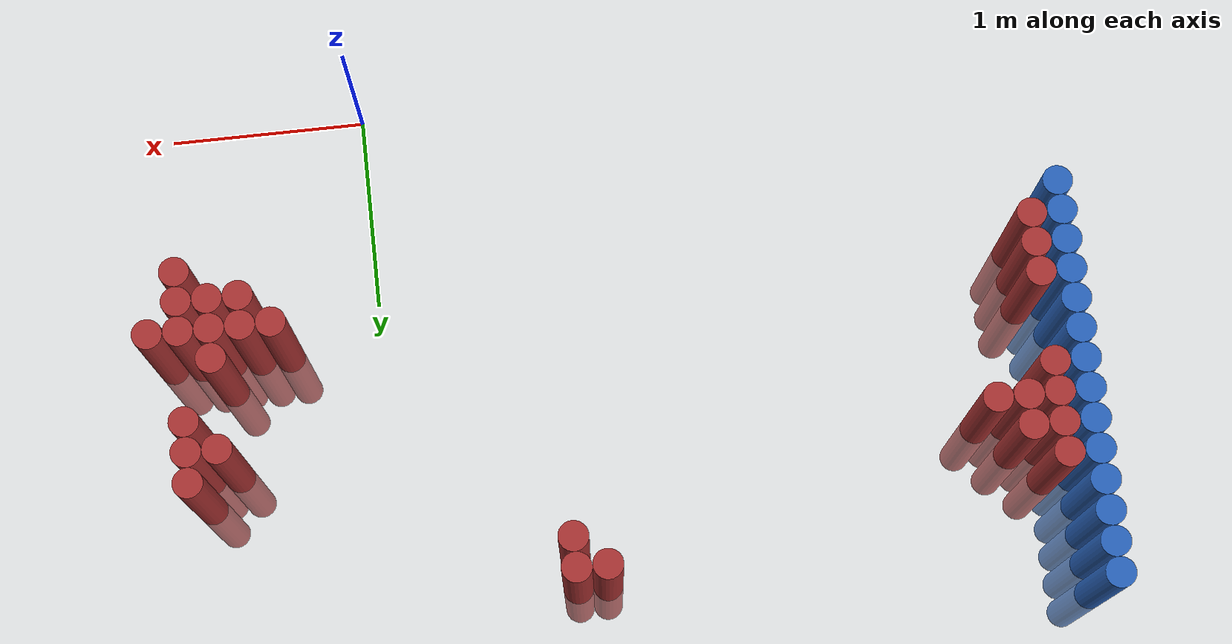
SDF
<sdf version="1.6">
 <world name="default">
  <model name="ground_plane">
   <static>1</static>
   <link name="link">
    <collision name="collision">
     <geometry><plane><normal>0 0 1</normal><size>100 100</size></plane></geometry>
     <surface><friction><ode><mu>100</mu><mu2>50</mu2></ode></friction></surface>
    </collision>
    <visual name="visual">
     <cast_shadows>0</cast_shadows>
     <geometry><plane><normal>0 0 1</normal><size>100 100</size></plane></geometry>
     <material>
      <script><uri>file://media/materials/scripts/gazebo.material</uri><name>Gazebo/Grey</name></script>
     </material>
    </visual>
   </link>
  </model>
  <model name="unit_cylinder_129">
   <static>1</static>
   <pose>-3.425000 1.075000 0.000000 0.000000 0.000000 0.000000</pose>
   <link name="link">
    <inertial>
     <mass>1</mass>
     <inertia><ixx>0.145833</ixx><ixy>0</ixy><ixz>0</ixz><iyy>0.145833</iyy><iyz>0</iyz><izz>0.125</izz></inertia>
    </inertial>
    <collision name="collision">
     <geometry><cylinder><radius>0.075000</radius><length>1.5</length></cylinder></geometry>
    </collision>
    <visual name="visual">
     <geometry><cylinder><radius>0.075000</radius><length>1.5</length></cylinder></geometry>
     <material>
      <ambient>0.152000 0.379000 0.720000 1</ambient>
      <diffuse>0.152000 0.379000 0.720000 1</diffuse>
     </material>
     <material>
      <script><name>Gazebo/Grey</name><uri>file://media/materials/scripts/gazebo.material</uri></script>
     </material>
    </visual>
   </link>
  </model>
  <model name="unit_cylinder_131">
   <static>1</static>
   <pose>-3.425000 1.225000 0.000000 0.000000 0.000000 0.000000</pose>
   <link name="link">
    <inertial>
     <mass>1</mass>
     <inertia><ixx>0.145833</ixx><ixy>0</ixy><ixz>0</ixz><iyy>0.145833</iyy><iyz>0</iyz><izz>0.125</izz></inertia>
    </inertial>
    <collision name="collision">
     <geometry><cylinder><radius>0.075000</radius><length>1.5</length></cylinder></geometry>
    </collision>
    <visual name="visual">
     <geometry><cylinder><radius>0.075000</radius><length>1.5</length></cylinder></geometry>
     <material>
      <ambient>0.152000 0.379000 0.720000 1</ambient>
      <diffuse>0.152000 0.379000 0.720000 1</diffuse>
     </material>
     <material>
      <script><name>Gazebo/Grey</name><uri>file://media/materials/scripts/gazebo.material</uri></script>
     </material>
    </visual>
   </link>
  </model>
  <model name="unit_cylinder_133">
   <static>1</static>
   <pose>-3.425000 1.375000 0.000000 0.000000 0.000000 0.000000</pose>
   <link name="link">
    <inertial>
     <mass>1</mass>
     <inertia><ixx>0.145833</ixx><ixy>0</ixy><ixz>0</ixz><iyy>0.145833</iyy><iyz>0</iyz><izz>0.125</izz></inertia>
    </inertial>
    <collision name="collision">
     <geometry><cylinder><radius>0.075000</radius><length>1.5</length></cylinder></geometry>
    </collision>
    <visual name="visual">
     <geometry><cylinder><radius>0.075000</radius><length>1.5</length></cylinder></geometry>
     <material>
      <ambient>0.152000 0.379000 0.720000 1</ambient>
      <diffuse>0.152000 0.379000 0.720000 1</diffuse>
     </material>
     <material>
      <script><name>Gazebo/Grey</name><uri>file://media/materials/scripts/gazebo.material</uri></script>
     </material>
    </visual>
   </link>
  </model>
  <model name="unit_cylinder_135">
   <static>1</static>
   <pose>-3.425000 1.525000 0.000000 0.000000 0.000000 0.000000</pose>
   <link name="link">
    <inertial>
     <mass>1</mass>
     <inertia><ixx>0.145833</ixx><ixy>0</ixy><ixz>0</ixz><iyy>0.145833</iyy><iyz>0</iyz><izz>0.125</izz></inertia>
    </inertial>
    <collision name="collision">
     <geometry><cylinder><radius>0.075000</radius><length>1.5</length></cylinder></geometry>
    </collision>
    <visual name="visual">
     <geometry><cylinder><radius>0.075000</radius><length>1.5</length></cylinder></geometry>
     <material>
      <ambient>0.152000 0.379000 0.720000 1</ambient>
      <diffuse>0.152000 0.379000 0.720000 1</diffuse>
     </material>
     <material>
      <script><name>Gazebo/Grey</name><uri>file://media/materials/scripts/gazebo.material</uri></script>
     </material>
    </visual>
   </link>
  </model>
  <model name="unit_cylinder_137">
   <static>1</static>
   <pose>-3.425000 1.675000 0.000000 0.000000 0.000000 0.000000</pose>
   <link name="link">
    <inertial>
     <mass>1</mass>
     <inertia><ixx>0.145833</ixx><ixy>0</ixy><ixz>0</ixz><iyy>0.145833</iyy><iyz>0</iyz><izz>0.125</izz></inertia>
    </inertial>
    <collision name="collision">
     <geometry><cylinder><radius>0.075000</radius><length>1.5</length></cylinder></geometry>
    </collision>
    <visual name="visual">
     <geometry><cylinder><radius>0.075000</radius><length>1.5</length></cylinder></geometry>
     <material>
      <ambient>0.152000 0.379000 0.720000 1</ambient>
      <diffuse>0.152000 0.379000 0.720000 1</diffuse>
     </material>
     <material>
      <script><name>Gazebo/Grey</name><uri>file://media/materials/scripts/gazebo.material</uri></script>
     </material>
    </visual>
   </link>
  </model>
  <model name="unit_cylinder_139">
   <static>1</static>
   <pose>-3.425000 1.825000 0.000000 0.000000 0.000000 0.000000</pose>
   <link name="link">
    <inertial>
     <mass>1</mass>
     <inertia><ixx>0.145833</ixx><ixy>0</ixy><ixz>0</ixz><iyy>0.145833</iyy><iyz>0</iyz><izz>0.125</izz></inertia>
    </inertial>
    <collision name="collision">
     <geometry><cylinder><radius>0.075000</radius><length>1.5</length></cylinder></geometry>
    </collision>
    <visual name="visual">
     <geometry><cylinder><radius>0.075000</radius><length>1.5</length></cylinder></geometry>
     <material>
      <ambient>0.152000 0.379000 0.720000 1</ambient>
      <diffuse>0.152000 0.379000 0.720000 1</diffuse>
     </material>
     <material>
      <script><name>Gazebo/Grey</name><uri>file://media/materials/scripts/gazebo.material</uri></script>
     </material>
    </visual>
   </link>
  </model>
  <model name="unit_cylinder_141">
   <static>1</static>
   <pose>-3.425000 1.975000 0.000000 0.000000 0.000000 0.000000</pose>
   <link name="link">
    <inertial>
     <mass>1</mass>
     <inertia><ixx>0.145833</ixx><ixy>0</ixy><ixz>0</ixz><iyy>0.145833</iyy><iyz>0</iyz><izz>0.125</izz></inertia>
    </inertial>
    <collision name="collision">
     <geometry><cylinder><radius>0.075000</radius><length>1.5</length></cylinder></geometry>
    </collision>
    <visual name="visual">
     <geometry><cylinder><radius>0.075000</radius><length>1.5</length></cylinder></geometry>
     <material>
      <ambient>0.152000 0.379000 0.720000 1</ambient>
      <diffuse>0.152000 0.379000 0.720000 1</diffuse>
     </material>
     <material>
      <script><name>Gazebo/Grey</name><uri>file://media/materials/scripts/gazebo.material</uri></script>
     </material>
    </visual>
   </link>
  </model>
  <model name="unit_cylinder_143">
   <static>1</static>
   <pose>-3.425000 2.125000 0.000000 0.000000 0.000000 0.000000</pose>
   <link name="link">
    <inertial>
     <mass>1</mass>
     <inertia><ixx>0.145833</ixx><ixy>0</ixy><ixz>0</ixz><iyy>0.145833</iyy><iyz>0</iyz><izz>0.125</izz></inertia>
    </inertial>
    <collision name="collision">
     <geometry><cylinder><radius>0.075000</radius><length>1.5</length></cylinder></geometry>
    </collision>
    <visual name="visual">
     <geometry><cylinder><radius>0.075000</radius><length>1.5</length></cylinder></geometry>
     <material>
      <ambient>0.152000 0.379000 0.720000 1</ambient>
      <diffuse>0.152000 0.379000 0.720000 1</diffuse>
     </material>
     <material>
      <script><name>Gazebo/Grey</name><uri>file://media/materials/scripts/gazebo.material</uri></script>
     </material>
    </visual>
   </link>
  </model>
  <model name="unit_cylinder_145">
   <static>1</static>
   <pose>-3.425000 2.275000 0.000000 0.000000 0.000000 0.000000</pose>
   <link name="link">
    <inertial>
     <mass>1</mass>
     <inertia><ixx>0.145833</ixx><ixy>0</ixy><ixz>0</ixz><iyy>0.145833</iyy><iyz>0</iyz><izz>0.125</izz></inertia>
    </inertial>
    <collision name="collision">
     <geometry><cylinder><radius>0.075000</radius><length>1.5</length></cylinder></geometry>
    </collision>
    <visual name="visual">
     <geometry><cylinder><radius>0.075000</radius><length>1.5</length></cylinder></geometry>
     <material>
      <ambient>0.152000 0.379000 0.720000 1</ambient>
      <diffuse>0.152000 0.379000 0.720000 1</diffuse>
     </material>
     <material>
      <script><name>Gazebo/Grey</name><uri>file://media/materials/scripts/gazebo.material</uri></script>
     </material>
    </visual>
   </link>
  </model>
  <model name="unit_cylinder_147">
   <static>1</static>
   <pose>-3.425000 2.425000 0.000000 0.000000 0.000000 0.000000</pose>
   <link name="link">
    <inertial>
     <mass>1</mass>
     <inertia><ixx>0.145833</ixx><ixy>0</ixy><ixz>0</ixz><iyy>0.145833</iyy><iyz>0</iyz><izz>0.125</izz></inertia>
    </inertial>
    <collision name="collision">
     <geometry><cylinder><radius>0.075000</radius><length>1.5</length></cylinder></geometry>
    </collision>
    <visual name="visual">
     <geometry><cylinder><radius>0.075000</radius><length>1.5</length></cylinder></geometry>
     <material>
      <ambient>0.152000 0.379000 0.720000 1</ambient>
      <diffuse>0.152000 0.379000 0.720000 1</diffuse>
     </material>
     <material>
      <script><name>Gazebo/Grey</name><uri>file://media/materials/scripts/gazebo.material</uri></script>
     </material>
    </visual>
   </link>
  </model>
  <model name="unit_cylinder_149">
   <static>1</static>
   <pose>-3.425000 2.575000 0.000000 0.000000 0.000000 0.000000</pose>
   <link name="link">
    <inertial>
     <mass>1</mass>
     <inertia><ixx>0.145833</ixx><ixy>0</ixy><ixz>0</ixz><iyy>0.145833</iyy><iyz>0</iyz><izz>0.125</izz></inertia>
    </inertial>
    <collision name="collision">
     <geometry><cylinder><radius>0.075000</radius><length>1.5</length></cylinder></geometry>
    </collision>
    <visual name="visual">
     <geometry><cylinder><radius>0.075000</radius><length>1.5</length></cylinder></geometry>
     <material>
      <ambient>0.152000 0.379000 0.720000 1</ambient>
      <diffuse>0.152000 0.379000 0.720000 1</diffuse>
     </material>
     <material>
      <script><name>Gazebo/Grey</name><uri>file://media/materials/scripts/gazebo.material</uri></script>
     </material>
    </visual>
   </link>
  </model>
  <model name="unit_cylinder_151">
   <static>1</static>
   <pose>-3.425000 2.725000 0.000000 0.000000 0.000000 0.000000</pose>
   <link name="link">
    <inertial>
     <mass>1</mass>
     <inertia><ixx>0.145833</ixx><ixy>0</ixy><ixz>0</ixz><iyy>0.145833</iyy><iyz>0</iyz><izz>0.125</izz></inertia>
    </inertial>
    <collision name="collision">
     <geometry><cylinder><radius>0.075000</radius><length>1.5</length></cylinder></geometry>
    </collision>
    <visual name="visual">
     <geometry><cylinder><radius>0.075000</radius><length>1.5</length></cylinder></geometry>
     <material>
      <ambient>0.152000 0.379000 0.720000 1</ambient>
      <diffuse>0.152000 0.379000 0.720000 1</diffuse>
     </material>
     <material>
      <script><name>Gazebo/Grey</name><uri>file://media/materials/scripts/gazebo.material</uri></script>
     </material>
    </visual>
   </link>
  </model>
  <model name="unit_cylinder_153">
   <static>1</static>
   <pose>-3.425000 2.875000 0.000000 0.000000 0.000000 0.000000</pose>
   <link name="link">
    <inertial>
     <mass>1</mass>
     <inertia><ixx>0.145833</ixx><ixy>0</ixy><ixz>0</ixz><iyy>0.145833</iyy><iyz>0</iyz><izz>0.125</izz></inertia>
    </inertial>
    <collision name="collision">
     <geometry><cylinder><radius>0.075000</radius><length>1.5</length></cylinder></geometry>
    </collision>
    <visual name="visual">
     <geometry><cylinder><radius>0.075000</radius><length>1.5</length></cylinder></geometry>
     <material>
      <ambient>0.152000 0.379000 0.720000 1</ambient>
      <diffuse>0.152000 0.379000 0.720000 1</diffuse>
     </material>
     <material>
      <script><name>Gazebo/Grey</name><uri>file://media/materials/scripts/gazebo.material</uri></script>
     </material>
    </visual>
   </link>
  </model>
  <model name="unit_cylinder_227">
   <static>1</static>
   <pose>-3.425000 0.925000 0.000000 0.000000 0.000000 0.000000</pose>
   <link name="link">
    <inertial>
     <mass>1</mass>
     <inertia><ixx>0.145833</ixx><ixy>0</ixy><ixz>0</ixz><iyy>0.145833</iyy><iyz>0</iyz><izz>0.125</izz></inertia>
    </inertial>
    <collision name="collision">
     <geometry><cylinder><radius>0.075000</radius><length>1.5</length></cylinder></geometry>
    </collision>
    <visual name="visual">
     <geometry><cylinder><radius>0.075000</radius><length>1.5</length></cylinder></geometry>
     <material>
      <ambient>0.152000 0.379000 0.720000 1</ambient>
      <diffuse>0.152000 0.379000 0.720000 1</diffuse>
     </material>
     <material>
      <script><name>Gazebo/Grey</name><uri>file://media/materials/scripts/gazebo.material</uri></script>
     </material>
    </visual>
   </link>
  </model>
  <model name="unit_cylinder_228">
   <static>1</static>
   <pose>-3.425000 1.075000 0.000000 0.000000 0.000000 0.000000</pose>
   <link name="link">
    <inertial>
     <mass>1</mass>
     <inertia><ixx>0.145833</ixx><ixy>0</ixy><ixz>0</ixz><iyy>0.145833</iyy><iyz>0</iyz><izz>0.125</izz></inertia>
    </inertial>
    <collision name="collision">
     <geometry><cylinder><radius>0.075000</radius><length>1.5</length></cylinder></geometry>
    </collision>
    <visual name="visual">
     <geometry><cylinder><radius>0.075000</radius><length>1.5</length></cylinder></geometry>
     <material>
      <ambient>0.152000 0.379000 0.720000 1</ambient>
      <diffuse>0.152000 0.379000 0.720000 1</diffuse>
     </material>
     <material>
      <script><name>Gazebo/Grey</name><uri>file://media/materials/scripts/gazebo.material</uri></script>
     </material>
    </visual>
   </link>
  </model>
  <model name="unit_cylinder_229">
   <static>1</static>
   <pose>-3.425000 1.225000 0.000000 0.000000 0.000000 0.000000</pose>
   <link name="link">
    <inertial>
     <mass>1</mass>
     <inertia><ixx>0.145833</ixx><ixy>0</ixy><ixz>0</ixz><iyy>0.145833</iyy><iyz>0</iyz><izz>0.125</izz></inertia>
    </inertial>
    <collision name="collision">
     <geometry><cylinder><radius>0.075000</radius><length>1.5</length></cylinder></geometry>
    </collision>
    <visual name="visual">
     <geometry><cylinder><radius>0.075000</radius><length>1.5</length></cylinder></geometry>
     <material>
      <ambient>0.152000 0.379000 0.720000 1</ambient>
      <diffuse>0.152000 0.379000 0.720000 1</diffuse>
     </material>
     <material>
      <script><name>Gazebo/Grey</name><uri>file://media/materials/scripts/gazebo.material</uri></script>
     </material>
    </visual>
   </link>
  </model>
  <model name="unit_cylinder_230">
   <static>1</static>
   <pose>-3.425000 1.375000 0.000000 0.000000 0.000000 0.000000</pose>
   <link name="link">
    <inertial>
     <mass>1</mass>
     <inertia><ixx>0.145833</ixx><ixy>0</ixy><ixz>0</ixz><iyy>0.145833</iyy><iyz>0</iyz><izz>0.125</izz></inertia>
    </inertial>
    <collision name="collision">
     <geometry><cylinder><radius>0.075000</radius><length>1.5</length></cylinder></geometry>
    </collision>
    <visual name="visual">
     <geometry><cylinder><radius>0.075000</radius><length>1.5</length></cylinder></geometry>
     <material>
      <ambient>0.152000 0.379000 0.720000 1</ambient>
      <diffuse>0.152000 0.379000 0.720000 1</diffuse>
     </material>
     <material>
      <script><name>Gazebo/Grey</name><uri>file://media/materials/scripts/gazebo.material</uri></script>
     </material>
    </visual>
   </link>
  </model>
  <model name="unit_cylinder_231">
   <static>1</static>
   <pose>-3.425000 1.525000 0.000000 0.000000 0.000000 0.000000</pose>
   <link name="link">
    <inertial>
     <mass>1</mass>
     <inertia><ixx>0.145833</ixx><ixy>0</ixy><ixz>0</ixz><iyy>0.145833</iyy><iyz>0</iyz><izz>0.125</izz></inertia>
    </inertial>
    <collision name="collision">
     <geometry><cylinder><radius>0.075000</radius><length>1.5</length></cylinder></geometry>
    </collision>
    <visual name="visual">
     <geometry><cylinder><radius>0.075000</radius><length>1.5</length></cylinder></geometry>
     <material>
      <ambient>0.152000 0.379000 0.720000 1</ambient>
      <diffuse>0.152000 0.379000 0.720000 1</diffuse>
     </material>
     <material>
      <script><name>Gazebo/Grey</name><uri>file://media/materials/scripts/gazebo.material</uri></script>
     </material>
    </visual>
   </link>
  </model>
  <model name="unit_cylinder_232">
   <static>1</static>
   <pose>-3.425000 1.675000 0.000000 0.000000 0.000000 0.000000</pose>
   <link name="link">
    <inertial>
     <mass>1</mass>
     <inertia><ixx>0.145833</ixx><ixy>0</ixy><ixz>0</ixz><iyy>0.145833</iyy><iyz>0</iyz><izz>0.125</izz></inertia>
    </inertial>
    <collision name="collision">
     <geometry><cylinder><radius>0.075000</radius><length>1.5</length></cylinder></geometry>
    </collision>
    <visual name="visual">
     <geometry><cylinder><radius>0.075000</radius><length>1.5</length></cylinder></geometry>
     <material>
      <ambient>0.152000 0.379000 0.720000 1</ambient>
      <diffuse>0.152000 0.379000 0.720000 1</diffuse>
     </material>
     <material>
      <script><name>Gazebo/Grey</name><uri>file://media/materials/scripts/gazebo.material</uri></script>
     </material>
    </visual>
   </link>
  </model>
  <model name="unit_cylinder_233">
   <static>1</static>
   <pose>-3.425000 1.825000 0.000000 0.000000 0.000000 0.000000</pose>
   <link name="link">
    <inertial>
     <mass>1</mass>
     <inertia><ixx>0.145833</ixx><ixy>0</ixy><ixz>0</ixz><iyy>0.145833</iyy><iyz>0</iyz><izz>0.125</izz></inertia>
    </inertial>
    <collision name="collision">
     <geometry><cylinder><radius>0.075000</radius><length>1.5</length></cylinder></geometry>
    </collision>
    <visual name="visual">
     <geometry><cylinder><radius>0.075000</radius><length>1.5</length></cylinder></geometry>
     <material>
      <ambient>0.152000 0.379000 0.720000 1</ambient>
      <diffuse>0.152000 0.379000 0.720000 1</diffuse>
     </material>
     <material>
      <script><name>Gazebo/Grey</name><uri>file://media/materials/scripts/gazebo.material</uri></script>
     </material>
    </visual>
   </link>
  </model>
  <model name="unit_cylinder_234">
   <static>1</static>
   <pose>-3.425000 1.975000 0.000000 0.000000 0.000000 0.000000</pose>
   <link name="link">
    <inertial>
     <mass>1</mass>
     <inertia><ixx>0.145833</ixx><ixy>0</ixy><ixz>0</ixz><iyy>0.145833</iyy><iyz>0</iyz><izz>0.125</izz></inertia>
    </inertial>
    <collision name="collision">
     <geometry><cylinder><radius>0.075000</radius><length>1.5</length></cylinder></geometry>
    </collision>
    <visual name="visual">
     <geometry><cylinder><radius>0.075000</radius><length>1.5</length></cylinder></geometry>
     <material>
      <ambient>0.152000 0.379000 0.720000 1</ambient>
      <diffuse>0.152000 0.379000 0.720000 1</diffuse>
     </material>
     <material>
      <script><name>Gazebo/Grey</name><uri>file://media/materials/scripts/gazebo.material</uri></script>
     </material>
    </visual>
   </link>
  </model>
  <model name="unit_cylinder_235">
   <static>1</static>
   <pose>-3.425000 2.125000 0.000000 0.000000 0.000000 0.000000</pose>
   <link name="link">
    <inertial>
     <mass>1</mass>
     <inertia><ixx>0.145833</ixx><ixy>0</ixy><ixz>0</ixz><iyy>0.145833</iyy><iyz>0</iyz><izz>0.125</izz></inertia>
    </inertial>
    <collision name="collision">
     <geometry><cylinder><radius>0.075000</radius><length>1.5</length></cylinder></geometry>
    </collision>
    <visual name="visual">
     <geometry><cylinder><radius>0.075000</radius><length>1.5</length></cylinder></geometry>
     <material>
      <ambient>0.152000 0.379000 0.720000 1</ambient>
      <diffuse>0.152000 0.379000 0.720000 1</diffuse>
     </material>
     <material>
      <script><name>Gazebo/Grey</name><uri>file://media/materials/scripts/gazebo.material</uri></script>
     </material>
    </visual>
   </link>
  </model>
  <model name="unit_cylinder_236">
   <static>1</static>
   <pose>-3.425000 2.275000 0.000000 0.000000 0.000000 0.000000</pose>
   <link name="link">
    <inertial>
     <mass>1</mass>
     <inertia><ixx>0.145833</ixx><ixy>0</ixy><ixz>0</ixz><iyy>0.145833</iyy><iyz>0</iyz><izz>0.125</izz></inertia>
    </inertial>
    <collision name="collision">
     <geometry><cylinder><radius>0.075000</radius><length>1.5</length></cylinder></geometry>
    </collision>
    <visual name="visual">
     <geometry><cylinder><radius>0.075000</radius><length>1.5</length></cylinder></geometry>
     <material>
      <ambient>0.152000 0.379000 0.720000 1</ambient>
      <diffuse>0.152000 0.379000 0.720000 1</diffuse>
     </material>
     <material>
      <script><name>Gazebo/Grey</name><uri>file://media/materials/scripts/gazebo.material</uri></script>
     </material>
    </visual>
   </link>
  </model>
  <model name="unit_cylinder_237">
   <static>1</static>
   <pose>-3.425000 2.425000 0.000000 0.000000 0.000000 0.000000</pose>
   <link name="link">
    <inertial>
     <mass>1</mass>
     <inertia><ixx>0.145833</ixx><ixy>0</ixy><ixz>0</ixz><iyy>0.145833</iyy><iyz>0</iyz><izz>0.125</izz></inertia>
    </inertial>
    <collision name="collision">
     <geometry><cylinder><radius>0.075000</radius><length>1.5</length></cylinder></geometry>
    </collision>
    <visual name="visual">
     <geometry><cylinder><radius>0.075000</radius><length>1.5</length></cylinder></geometry>
     <material>
      <ambient>0.152000 0.379000 0.720000 1</ambient>
      <diffuse>0.152000 0.379000 0.720000 1</diffuse>
     </material>
     <material>
      <script><name>Gazebo/Grey</name><uri>file://media/materials/scripts/gazebo.material</uri></script>
     </material>
    </visual>
   </link>
  </model>
  <model name="unit_cylinder_238">
   <static>1</static>
   <pose>-3.425000 2.575000 0.000000 0.000000 0.000000 0.000000</pose>
   <link name="link">
    <inertial>
     <mass>1</mass>
     <inertia><ixx>0.145833</ixx><ixy>0</ixy><ixz>0</ixz><iyy>0.145833</iyy><iyz>0</iyz><izz>0.125</izz></inertia>
    </inertial>
    <collision name="collision">
     <geometry><cylinder><radius>0.075000</radius><length>1.5</length></cylinder></geometry>
    </collision>
    <visual name="visual">
     <geometry><cylinder><radius>0.075000</radius><length>1.5</length></cylinder></geometry>
     <material>
      <ambient>0.152000 0.379000 0.720000 1</ambient>
      <diffuse>0.152000 0.379000 0.720000 1</diffuse>
     </material>
     <material>
      <script><name>Gazebo/Grey</name><uri>file://media/materials/scripts/gazebo.material</uri></script>
     </material>
    </visual>
   </link>
  </model>
  <model name="unit_cylinder_239">
   <static>1</static>
   <pose>-3.425000 2.725000 0.000000 0.000000 0.000000 0.000000</pose>
   <link name="link">
    <inertial>
     <mass>1</mass>
     <inertia><ixx>0.145833</ixx><ixy>0</ixy><ixz>0</ixz><iyy>0.145833</iyy><iyz>0</iyz><izz>0.125</izz></inertia>
    </inertial>
    <collision name="collision">
     <geometry><cylinder><radius>0.075000</radius><length>1.5</length></cylinder></geometry>
    </collision>
    <visual name="visual">
     <geometry><cylinder><radius>0.075000</radius><length>1.5</length></cylinder></geometry>
     <material>
      <ambient>0.152000 0.379000 0.720000 1</ambient>
      <diffuse>0.152000 0.379000 0.720000 1</diffuse>
     </material>
     <material>
      <script><name>Gazebo/Grey</name><uri>file://media/materials/scripts/gazebo.material</uri></script>
     </material>
    </visual>
   </link>
  </model>
  <model name="unit_cylinder_240">
   <static>1</static>
   <pose>-3.425000 2.875000 0.000000 0.000000 0.000000 0.000000</pose>
   <link name="link">
    <inertial>
     <mass>1</mass>
     <inertia><ixx>0.145833</ixx><ixy>0</ixy><ixz>0</ixz><iyy>0.145833</iyy><iyz>0</iyz><izz>0.125</izz></inertia>
    </inertial>
    <collision name="collision">
     <geometry><cylinder><radius>0.075000</radius><length>1.5</length></cylinder></geometry>
    </collision>
    <visual name="visual">
     <geometry><cylinder><radius>0.075000</radius><length>1.5</length></cylinder></geometry>
     <material>
      <ambient>0.152000 0.379000 0.720000 1</ambient>
      <diffuse>0.152000 0.379000 0.720000 1</diffuse>
     </material>
     <material>
      <script><name>Gazebo/Grey</name><uri>file://media/materials/scripts/gazebo.material</uri></script>
     </material>
    </visual>
   </link>
  </model>
  <model name="unit_cylinder_266">
   <static>1</static>
   <pose>-3.275000 1.075000 0.000000 0.000000 0.000000 0.000000</pose>
   <link name="link">
    <inertial>
     <mass>1</mass>
     <inertia><ixx>0.145833</ixx><ixy>0</ixy><ixz>0</ixz><iyy>0.145833</iyy><iyz>0</iyz><izz>0.125</izz></inertia>
    </inertial>
    <collision name="collision">
     <geometry><cylinder><radius>0.075000</radius><length>1.5</length></cylinder></geometry>
    </collision>
    <visual name="visual">
     <geometry><cylinder><radius>0.075000</radius><length>1.5</length></cylinder></geometry>
     <material>
      <ambient>0.648000 0.192000 0.192000 1</ambient>
      <diffuse>0.648000 0.192000 0.192000 1</diffuse>
     </material>
     <material>
      <script><name>Gazebo/Grey</name><uri>file://media/materials/scripts/gazebo.material</uri></script>
     </material>
    </visual>
   </link>
  </model>
  <model name="unit_cylinder_267">
   <static>1</static>
   <pose>-3.275000 1.225000 0.000000 0.000000 0.000000 0.000000</pose>
   <link name="link">
    <inertial>
     <mass>1</mass>
     <inertia><ixx>0.145833</ixx><ixy>0</ixy><ixz>0</ixz><iyy>0.145833</iyy><iyz>0</iyz><izz>0.125</izz></inertia>
    </inertial>
    <collision name="collision">
     <geometry><cylinder><radius>0.075000</radius><length>1.5</length></cylinder></geometry>
    </collision>
    <visual name="visual">
     <geometry><cylinder><radius>0.075000</radius><length>1.5</length></cylinder></geometry>
     <material>
      <ambient>0.648000 0.192000 0.192000 1</ambient>
      <diffuse>0.648000 0.192000 0.192000 1</diffuse>
     </material>
     <material>
      <script><name>Gazebo/Grey</name><uri>file://media/materials/scripts/gazebo.material</uri></script>
     </material>
    </visual>
   </link>
  </model>
  <model name="unit_cylinder_268">
   <static>1</static>
   <pose>-3.275000 1.375000 0.000000 0.000000 0.000000 0.000000</pose>
   <link name="link">
    <inertial>
     <mass>1</mass>
     <inertia><ixx>0.145833</ixx><ixy>0</ixy><ixz>0</ixz><iyy>0.145833</iyy><iyz>0</iyz><izz>0.125</izz></inertia>
    </inertial>
    <collision name="collision">
     <geometry><cylinder><radius>0.075000</radius><length>1.5</length></cylinder></geometry>
    </collision>
    <visual name="visual">
     <geometry><cylinder><radius>0.075000</radius><length>1.5</length></cylinder></geometry>
     <material>
      <ambient>0.648000 0.192000 0.192000 1</ambient>
      <diffuse>0.648000 0.192000 0.192000 1</diffuse>
     </material>
     <material>
      <script><name>Gazebo/Grey</name><uri>file://media/materials/scripts/gazebo.material</uri></script>
     </material>
    </visual>
   </link>
  </model>
  <model name="unit_cylinder_269">
   <static>1</static>
   <pose>-3.275000 1.825000 0.000000 0.000000 0.000000 0.000000</pose>
   <link name="link">
    <inertial>
     <mass>1</mass>
     <inertia><ixx>0.145833</ixx><ixy>0</ixy><ixz>0</ixz><iyy>0.145833</iyy><iyz>0</iyz><izz>0.125</izz></inertia>
    </inertial>
    <collision name="collision">
     <geometry><cylinder><radius>0.075000</radius><length>1.5</length></cylinder></geometry>
    </collision>
    <visual name="visual">
     <geometry><cylinder><radius>0.075000</radius><length>1.5</length></cylinder></geometry>
     <material>
      <ambient>0.648000 0.192000 0.192000 1</ambient>
      <diffuse>0.648000 0.192000 0.192000 1</diffuse>
     </material>
     <material>
      <script><name>Gazebo/Grey</name><uri>file://media/materials/scripts/gazebo.material</uri></script>
     </material>
    </visual>
   </link>
  </model>
  <model name="unit_cylinder_270">
   <static>1</static>
   <pose>-3.275000 1.975000 0.000000 0.000000 0.000000 0.000000</pose>
   <link name="link">
    <inertial>
     <mass>1</mass>
     <inertia><ixx>0.145833</ixx><ixy>0</ixy><ixz>0</ixz><iyy>0.145833</iyy><iyz>0</iyz><izz>0.125</izz></inertia>
    </inertial>
    <collision name="collision">
     <geometry><cylinder><radius>0.075000</radius><length>1.5</length></cylinder></geometry>
    </collision>
    <visual name="visual">
     <geometry><cylinder><radius>0.075000</radius><length>1.5</length></cylinder></geometry>
     <material>
      <ambient>0.648000 0.192000 0.192000 1</ambient>
      <diffuse>0.648000 0.192000 0.192000 1</diffuse>
     </material>
     <material>
      <script><name>Gazebo/Grey</name><uri>file://media/materials/scripts/gazebo.material</uri></script>
     </material>
    </visual>
   </link>
  </model>
  <model name="unit_cylinder_271">
   <static>1</static>
   <pose>-3.275000 2.125000 0.000000 0.000000 0.000000 0.000000</pose>
   <link name="link">
    <inertial>
     <mass>1</mass>
     <inertia><ixx>0.145833</ixx><ixy>0</ixy><ixz>0</ixz><iyy>0.145833</iyy><iyz>0</iyz><izz>0.125</izz></inertia>
    </inertial>
    <collision name="collision">
     <geometry><cylinder><radius>0.075000</radius><length>1.5</length></cylinder></geometry>
    </collision>
    <visual name="visual">
     <geometry><cylinder><radius>0.075000</radius><length>1.5</length></cylinder></geometry>
     <material>
      <ambient>0.648000 0.192000 0.192000 1</ambient>
      <diffuse>0.648000 0.192000 0.192000 1</diffuse>
     </material>
     <material>
      <script><name>Gazebo/Grey</name><uri>file://media/materials/scripts/gazebo.material</uri></script>
     </material>
    </visual>
   </link>
  </model>
  <model name="unit_cylinder_272">
   <static>1</static>
   <pose>-3.275000 2.275000 0.000000 0.000000 0.000000 0.000000</pose>
   <link name="link">
    <inertial>
     <mass>1</mass>
     <inertia><ixx>0.145833</ixx><ixy>0</ixy><ixz>0</ixz><iyy>0.145833</iyy><iyz>0</iyz><izz>0.125</izz></inertia>
    </inertial>
    <collision name="collision">
     <geometry><cylinder><radius>0.075000</radius><length>1.5</length></cylinder></geometry>
    </collision>
    <visual name="visual">
     <geometry><cylinder><radius>0.075000</radius><length>1.5</length></cylinder></geometry>
     <material>
      <ambient>0.648000 0.192000 0.192000 1</ambient>
      <diffuse>0.648000 0.192000 0.192000 1</diffuse>
     </material>
     <material>
      <script><name>Gazebo/Grey</name><uri>file://media/materials/scripts/gazebo.material</uri></script>
     </material>
    </visual>
   </link>
  </model>
  <model name="unit_cylinder_281">
   <static>1</static>
   <pose>-3.125000 1.975000 0.000000 0.000000 0.000000 0.000000</pose>
   <link name="link">
    <inertial>
     <mass>1</mass>
     <inertia><ixx>0.145833</ixx><ixy>0</ixy><ixz>0</ixz><iyy>0.145833</iyy><iyz>0</iyz><izz>0.125</izz></inertia>
    </inertial>
    <collision name="collision">
     <geometry><cylinder><radius>0.075000</radius><length>1.5</length></cylinder></geometry>
    </collision>
    <visual name="visual">
     <geometry><cylinder><radius>0.075000</radius><length>1.5</length></cylinder></geometry>
     <material>
      <ambient>0.648000 0.192000 0.192000 1</ambient>
      <diffuse>0.648000 0.192000 0.192000 1</diffuse>
     </material>
     <material>
      <script><name>Gazebo/Grey</name><uri>file://media/materials/scripts/gazebo.material</uri></script>
     </material>
    </visual>
   </link>
  </model>
  <model name="unit_cylinder_282">
   <static>1</static>
   <pose>-3.125000 2.125000 0.000000 0.000000 0.000000 0.000000</pose>
   <link name="link">
    <inertial>
     <mass>1</mass>
     <inertia><ixx>0.145833</ixx><ixy>0</ixy><ixz>0</ixz><iyy>0.145833</iyy><iyz>0</iyz><izz>0.125</izz></inertia>
    </inertial>
    <collision name="collision">
     <geometry><cylinder><radius>0.075000</radius><length>1.5</length></cylinder></geometry>
    </collision>
    <visual name="visual">
     <geometry><cylinder><radius>0.075000</radius><length>1.5</length></cylinder></geometry>
     <material>
      <ambient>0.648000 0.192000 0.192000 1</ambient>
      <diffuse>0.648000 0.192000 0.192000 1</diffuse>
     </material>
     <material>
      <script><name>Gazebo/Grey</name><uri>file://media/materials/scripts/gazebo.material</uri></script>
     </material>
    </visual>
   </link>
  </model>
  <model name="unit_cylinder_284">
   <static>1</static>
   <pose>-2.975000 1.975000 0.000000 0.000000 0.000000 0.000000</pose>
   <link name="link">
    <inertial>
     <mass>1</mass>
     <inertia><ixx>0.145833</ixx><ixy>0</ixy><ixz>0</ixz><iyy>0.145833</iyy><iyz>0</iyz><izz>0.125</izz></inertia>
    </inertial>
    <collision name="collision">
     <geometry><cylinder><radius>0.075000</radius><length>1.5</length></cylinder></geometry>
    </collision>
    <visual name="visual">
     <geometry><cylinder><radius>0.075000</radius><length>1.5</length></cylinder></geometry>
     <material>
      <ambient>0.648000 0.192000 0.192000 1</ambient>
      <diffuse>0.648000 0.192000 0.192000 1</diffuse>
     </material>
     <material>
      <script><name>Gazebo/Grey</name><uri>file://media/materials/scripts/gazebo.material</uri></script>
     </material>
    </visual>
   </link>
  </model>
  <model name="unit_cylinder_299">
   <static>1</static>
   <pose>-1.025000 2.575000 0.000000 0.000000 0.000000 0.000000</pose>
   <link name="link">
    <inertial>
     <mass>1</mass>
     <inertia><ixx>0.145833</ixx><ixy>0</ixy><ixz>0</ixz><iyy>0.145833</iyy><iyz>0</iyz><izz>0.125</izz></inertia>
    </inertial>
    <collision name="collision">
     <geometry><cylinder><radius>0.075000</radius><length>1.5</length></cylinder></geometry>
    </collision>
    <visual name="visual">
     <geometry><cylinder><radius>0.075000</radius><length>1.5</length></cylinder></geometry>
     <material>
      <ambient>0.648000 0.192000 0.192000 1</ambient>
      <diffuse>0.648000 0.192000 0.192000 1</diffuse>
     </material>
     <material>
      <script><name>Gazebo/Grey</name><uri>file://media/materials/scripts/gazebo.material</uri></script>
     </material>
    </visual>
   </link>
  </model>
  <model name="unit_cylinder_301">
   <static>1</static>
   <pose>-0.875000 2.425000 0.000000 0.000000 0.000000 0.000000</pose>
   <link name="link">
    <inertial>
     <mass>1</mass>
     <inertia><ixx>0.145833</ixx><ixy>0</ixy><ixz>0</ixz><iyy>0.145833</iyy><iyz>0</iyz><izz>0.125</izz></inertia>
    </inertial>
    <collision name="collision">
     <geometry><cylinder><radius>0.075000</radius><length>1.5</length></cylinder></geometry>
    </collision>
    <visual name="visual">
     <geometry><cylinder><radius>0.075000</radius><length>1.5</length></cylinder></geometry>
     <material>
      <ambient>0.648000 0.192000 0.192000 1</ambient>
      <diffuse>0.648000 0.192000 0.192000 1</diffuse>
     </material>
     <material>
      <script><name>Gazebo/Grey</name><uri>file://media/materials/scripts/gazebo.material</uri></script>
     </material>
    </visual>
   </link>
  </model>
  <model name="unit_cylinder_302">
   <static>1</static>
   <pose>-0.875000 2.575000 0.000000 0.000000 0.000000 0.000000</pose>
   <link name="link">
    <inertial>
     <mass>1</mass>
     <inertia><ixx>0.145833</ixx><ixy>0</ixy><ixz>0</ixz><iyy>0.145833</iyy><iyz>0</iyz><izz>0.125</izz></inertia>
    </inertial>
    <collision name="collision">
     <geometry><cylinder><radius>0.075000</radius><length>1.5</length></cylinder></geometry>
    </collision>
    <visual name="visual">
     <geometry><cylinder><radius>0.075000</radius><length>1.5</length></cylinder></geometry>
     <material>
      <ambient>0.648000 0.192000 0.192000 1</ambient>
      <diffuse>0.648000 0.192000 0.192000 1</diffuse>
     </material>
     <material>
      <script><name>Gazebo/Grey</name><uri>file://media/materials/scripts/gazebo.material</uri></script>
     </material>
    </visual>
   </link>
  </model>
  <model name="unit_cylinder_307">
   <static>1</static>
   <pose>0.475000 1.225000 0.000000 0.000000 0.000000 0.000000</pose>
   <link name="link">
    <inertial>
     <mass>1</mass>
     <inertia><ixx>0.145833</ixx><ixy>0</ixy><ixz>0</ixz><iyy>0.145833</iyy><iyz>0</iyz><izz>0.125</izz></inertia>
    </inertial>
    <collision name="collision">
     <geometry><cylinder><radius>0.075000</radius><length>1.5</length></cylinder></geometry>
    </collision>
    <visual name="visual">
     <geometry><cylinder><radius>0.075000</radius><length>1.5</length></cylinder></geometry>
     <material>
      <ambient>0.648000 0.192000 0.192000 1</ambient>
      <diffuse>0.648000 0.192000 0.192000 1</diffuse>
     </material>
     <material>
      <script><name>Gazebo/Grey</name><uri>file://media/materials/scripts/gazebo.material</uri></script>
     </material>
    </visual>
   </link>
  </model>
  <model name="unit_cylinder_310">
   <static>1</static>
   <pose>0.625000 1.075000 0.000000 0.000000 0.000000 0.000000</pose>
   <link name="link">
    <inertial>
     <mass>1</mass>
     <inertia><ixx>0.145833</ixx><ixy>0</ixy><ixz>0</ixz><iyy>0.145833</iyy><iyz>0</iyz><izz>0.125</izz></inertia>
    </inertial>
    <collision name="collision">
     <geometry><cylinder><radius>0.075000</radius><length>1.5</length></cylinder></geometry>
    </collision>
    <visual name="visual">
     <geometry><cylinder><radius>0.075000</radius><length>1.5</length></cylinder></geometry>
     <material>
      <ambient>0.648000 0.192000 0.192000 1</ambient>
      <diffuse>0.648000 0.192000 0.192000 1</diffuse>
     </material>
     <material>
      <script><name>Gazebo/Grey</name><uri>file://media/materials/scripts/gazebo.material</uri></script>
     </material>
    </visual>
   </link>
  </model>
  <model name="unit_cylinder_311">
   <static>1</static>
   <pose>0.625000 1.225000 0.000000 0.000000 0.000000 0.000000</pose>
   <link name="link">
    <inertial>
     <mass>1</mass>
     <inertia><ixx>0.145833</ixx><ixy>0</ixy><ixz>0</ixz><iyy>0.145833</iyy><iyz>0</iyz><izz>0.125</izz></inertia>
    </inertial>
    <collision name="collision">
     <geometry><cylinder><radius>0.075000</radius><length>1.5</length></cylinder></geometry>
    </collision>
    <visual name="visual">
     <geometry><cylinder><radius>0.075000</radius><length>1.5</length></cylinder></geometry>
     <material>
      <ambient>0.648000 0.192000 0.192000 1</ambient>
      <diffuse>0.648000 0.192000 0.192000 1</diffuse>
     </material>
     <material>
      <script><name>Gazebo/Grey</name><uri>file://media/materials/scripts/gazebo.material</uri></script>
     </material>
    </visual>
   </link>
  </model>
  <model name="unit_cylinder_314">
   <static>1</static>
   <pose>0.775000 1.075000 0.000000 0.000000 0.000000 0.000000</pose>
   <link name="link">
    <inertial>
     <mass>1</mass>
     <inertia><ixx>0.145833</ixx><ixy>0</ixy><ixz>0</ixz><iyy>0.145833</iyy><iyz>0</iyz><izz>0.125</izz></inertia>
    </inertial>
    <collision name="collision">
     <geometry><cylinder><radius>0.075000</radius><length>1.5</length></cylinder></geometry>
    </collision>
    <visual name="visual">
     <geometry><cylinder><radius>0.075000</radius><length>1.5</length></cylinder></geometry>
     <material>
      <ambient>0.648000 0.192000 0.192000 1</ambient>
      <diffuse>0.648000 0.192000 0.192000 1</diffuse>
     </material>
     <material>
      <script><name>Gazebo/Grey</name><uri>file://media/materials/scripts/gazebo.material</uri></script>
     </material>
    </visual>
   </link>
  </model>
  <model name="unit_cylinder_315">
   <static>1</static>
   <pose>0.775000 1.225000 0.000000 0.000000 0.000000 0.000000</pose>
   <link name="link">
    <inertial>
     <mass>1</mass>
     <inertia><ixx>0.145833</ixx><ixy>0</ixy><ixz>0</ixz><iyy>0.145833</iyy><iyz>0</iyz><izz>0.125</izz></inertia>
    </inertial>
    <collision name="collision">
     <geometry><cylinder><radius>0.075000</radius><length>1.5</length></cylinder></geometry>
    </collision>
    <visual name="visual">
     <geometry><cylinder><radius>0.075000</radius><length>1.5</length></cylinder></geometry>
     <material>
      <ambient>0.648000 0.192000 0.192000 1</ambient>
      <diffuse>0.648000 0.192000 0.192000 1</diffuse>
     </material>
     <material>
      <script><name>Gazebo/Grey</name><uri>file://media/materials/scripts/gazebo.material</uri></script>
     </material>
    </visual>
   </link>
  </model>
  <model name="unit_cylinder_316">
   <static>1</static>
   <pose>0.775000 1.375000 0.000000 0.000000 0.000000 0.000000</pose>
   <link name="link">
    <inertial>
     <mass>1</mass>
     <inertia><ixx>0.145833</ixx><ixy>0</ixy><ixz>0</ixz><iyy>0.145833</iyy><iyz>0</iyz><izz>0.125</izz></inertia>
    </inertial>
    <collision name="collision">
     <geometry><cylinder><radius>0.075000</radius><length>1.5</length></cylinder></geometry>
    </collision>
    <visual name="visual">
     <geometry><cylinder><radius>0.075000</radius><length>1.5</length></cylinder></geometry>
     <material>
      <ambient>0.648000 0.192000 0.192000 1</ambient>
      <diffuse>0.648000 0.192000 0.192000 1</diffuse>
     </material>
     <material>
      <script><name>Gazebo/Grey</name><uri>file://media/materials/scripts/gazebo.material</uri></script>
     </material>
    </visual>
   </link>
  </model>
  <model name="unit_cylinder_317">
   <static>1</static>
   <pose>0.775000 1.825000 0.000000 0.000000 0.000000 0.000000</pose>
   <link name="link">
    <inertial>
     <mass>1</mass>
     <inertia><ixx>0.145833</ixx><ixy>0</ixy><ixz>0</ixz><iyy>0.145833</iyy><iyz>0</iyz><izz>0.125</izz></inertia>
    </inertial>
    <collision name="collision">
     <geometry><cylinder><radius>0.075000</radius><length>1.5</length></cylinder></geometry>
    </collision>
    <visual name="visual">
     <geometry><cylinder><radius>0.075000</radius><length>1.5</length></cylinder></geometry>
     <material>
      <ambient>0.648000 0.192000 0.192000 1</ambient>
      <diffuse>0.648000 0.192000 0.192000 1</diffuse>
     </material>
     <material>
      <script><name>Gazebo/Grey</name><uri>file://media/materials/scripts/gazebo.material</uri></script>
     </material>
    </visual>
   </link>
  </model>
  <model name="unit_cylinder_319">
   <static>1</static>
   <pose>0.925000 0.925000 0.000000 0.000000 0.000000 0.000000</pose>
   <link name="link">
    <inertial>
     <mass>1</mass>
     <inertia><ixx>0.145833</ixx><ixy>0</ixy><ixz>0</ixz><iyy>0.145833</iyy><iyz>0</iyz><izz>0.125</izz></inertia>
    </inertial>
    <collision name="collision">
     <geometry><cylinder><radius>0.075000</radius><length>1.5</length></cylinder></geometry>
    </collision>
    <visual name="visual">
     <geometry><cylinder><radius>0.075000</radius><length>1.5</length></cylinder></geometry>
     <material>
      <ambient>0.648000 0.192000 0.192000 1</ambient>
      <diffuse>0.648000 0.192000 0.192000 1</diffuse>
     </material>
     <material>
      <script><name>Gazebo/Grey</name><uri>file://media/materials/scripts/gazebo.material</uri></script>
     </material>
    </visual>
   </link>
  </model>
  <model name="unit_cylinder_320">
   <static>1</static>
   <pose>0.925000 1.075000 0.000000 0.000000 0.000000 0.000000</pose>
   <link name="link">
    <inertial>
     <mass>1</mass>
     <inertia><ixx>0.145833</ixx><ixy>0</ixy><ixz>0</ixz><iyy>0.145833</iyy><iyz>0</iyz><izz>0.125</izz></inertia>
    </inertial>
    <collision name="collision">
     <geometry><cylinder><radius>0.075000</radius><length>1.5</length></cylinder></geometry>
    </collision>
    <visual name="visual">
     <geometry><cylinder><radius>0.075000</radius><length>1.5</length></cylinder></geometry>
     <material>
      <ambient>0.648000 0.192000 0.192000 1</ambient>
      <diffuse>0.648000 0.192000 0.192000 1</diffuse>
     </material>
     <material>
      <script><name>Gazebo/Grey</name><uri>file://media/materials/scripts/gazebo.material</uri></script>
     </material>
    </visual>
   </link>
  </model>
  <model name="unit_cylinder_321">
   <static>1</static>
   <pose>0.925000 1.225000 0.000000 0.000000 0.000000 0.000000</pose>
   <link name="link">
    <inertial>
     <mass>1</mass>
     <inertia><ixx>0.145833</ixx><ixy>0</ixy><ixz>0</ixz><iyy>0.145833</iyy><iyz>0</iyz><izz>0.125</izz></inertia>
    </inertial>
    <collision name="collision">
     <geometry><cylinder><radius>0.075000</radius><length>1.5</length></cylinder></geometry>
    </collision>
    <visual name="visual">
     <geometry><cylinder><radius>0.075000</radius><length>1.5</length></cylinder></geometry>
     <material>
      <ambient>0.648000 0.192000 0.192000 1</ambient>
      <diffuse>0.648000 0.192000 0.192000 1</diffuse>
     </material>
     <material>
      <script><name>Gazebo/Grey</name><uri>file://media/materials/scripts/gazebo.material</uri></script>
     </material>
    </visual>
   </link>
  </model>
  <model name="unit_cylinder_322">
   <static>1</static>
   <pose>0.925000 1.675000 0.000000 0.000000 0.000000 0.000000</pose>
   <link name="link">
    <inertial>
     <mass>1</mass>
     <inertia><ixx>0.145833</ixx><ixy>0</ixy><ixz>0</ixz><iyy>0.145833</iyy><iyz>0</iyz><izz>0.125</izz></inertia>
    </inertial>
    <collision name="collision">
     <geometry><cylinder><radius>0.075000</radius><length>1.5</length></cylinder></geometry>
    </collision>
    <visual name="visual">
     <geometry><cylinder><radius>0.075000</radius><length>1.5</length></cylinder></geometry>
     <material>
      <ambient>0.648000 0.192000 0.192000 1</ambient>
      <diffuse>0.648000 0.192000 0.192000 1</diffuse>
     </material>
     <material>
      <script><name>Gazebo/Grey</name><uri>file://media/materials/scripts/gazebo.material</uri></script>
     </material>
    </visual>
   </link>
  </model>
  <model name="unit_cylinder_323">
   <static>1</static>
   <pose>0.925000 1.825000 0.000000 0.000000 0.000000 0.000000</pose>
   <link name="link">
    <inertial>
     <mass>1</mass>
     <inertia><ixx>0.145833</ixx><ixy>0</ixy><ixz>0</ixz><iyy>0.145833</iyy><iyz>0</iyz><izz>0.125</izz></inertia>
    </inertial>
    <collision name="collision">
     <geometry><cylinder><radius>0.075000</radius><length>1.5</length></cylinder></geometry>
    </collision>
    <visual name="visual">
     <geometry><cylinder><radius>0.075000</radius><length>1.5</length></cylinder></geometry>
     <material>
      <ambient>0.648000 0.192000 0.192000 1</ambient>
      <diffuse>0.648000 0.192000 0.192000 1</diffuse>
     </material>
     <material>
      <script><name>Gazebo/Grey</name><uri>file://media/materials/scripts/gazebo.material</uri></script>
     </material>
    </visual>
   </link>
  </model>
  <model name="unit_cylinder_324">
   <static>1</static>
   <pose>0.925000 1.975000 0.000000 0.000000 0.000000 0.000000</pose>
   <link name="link">
    <inertial>
     <mass>1</mass>
     <inertia><ixx>0.145833</ixx><ixy>0</ixy><ixz>0</ixz><iyy>0.145833</iyy><iyz>0</iyz><izz>0.125</izz></inertia>
    </inertial>
    <collision name="collision">
     <geometry><cylinder><radius>0.075000</radius><length>1.5</length></cylinder></geometry>
    </collision>
    <visual name="visual">
     <geometry><cylinder><radius>0.075000</radius><length>1.5</length></cylinder></geometry>
     <material>
      <ambient>0.648000 0.192000 0.192000 1</ambient>
      <diffuse>0.648000 0.192000 0.192000 1</diffuse>
     </material>
     <material>
      <script><name>Gazebo/Grey</name><uri>file://media/materials/scripts/gazebo.material</uri></script>
     </material>
    </visual>
   </link>
  </model>
  <model name="unit_cylinder_325">
   <static>1</static>
   <pose>1.075000 1.225000 0.000000 0.000000 0.000000 0.000000</pose>
   <link name="link">
    <inertial>
     <mass>1</mass>
     <inertia><ixx>0.145833</ixx><ixy>0</ixy><ixz>0</ixz><iyy>0.145833</iyy><iyz>0</iyz><izz>0.125</izz></inertia>
    </inertial>
    <collision name="collision">
     <geometry><cylinder><radius>0.075000</radius><length>1.5</length></cylinder></geometry>
    </collision>
    <visual name="visual">
     <geometry><cylinder><radius>0.075000</radius><length>1.5</length></cylinder></geometry>
     <material>
      <ambient>0.648000 0.192000 0.192000 1</ambient>
      <diffuse>0.648000 0.192000 0.192000 1</diffuse>
     </material>
     <material>
      <script><name>Gazebo/Grey</name><uri>file://media/materials/scripts/gazebo.material</uri></script>
     </material>
    </visual>
   </link>
  </model>
 </world>
</sdf>
